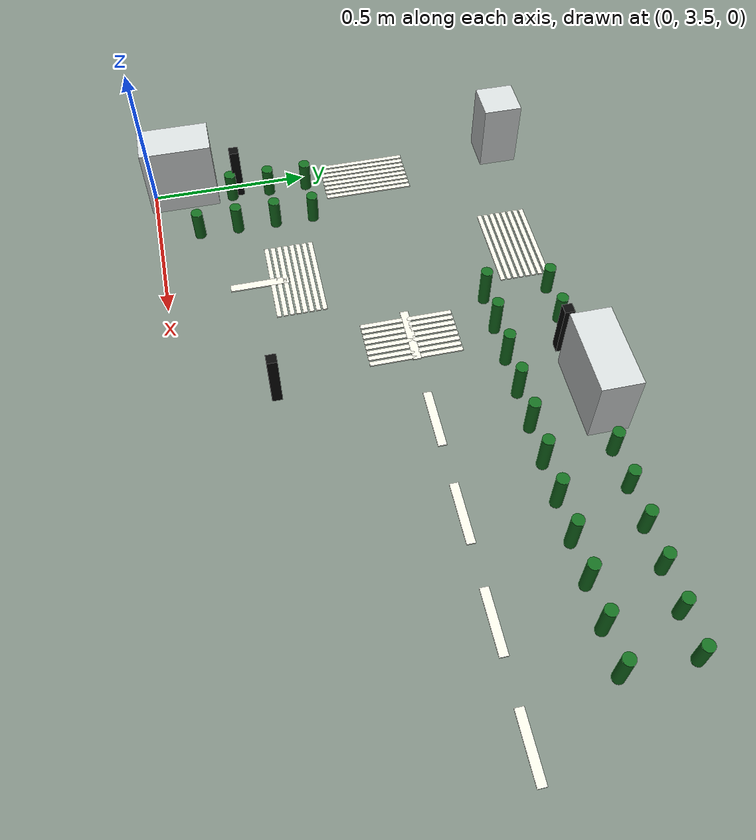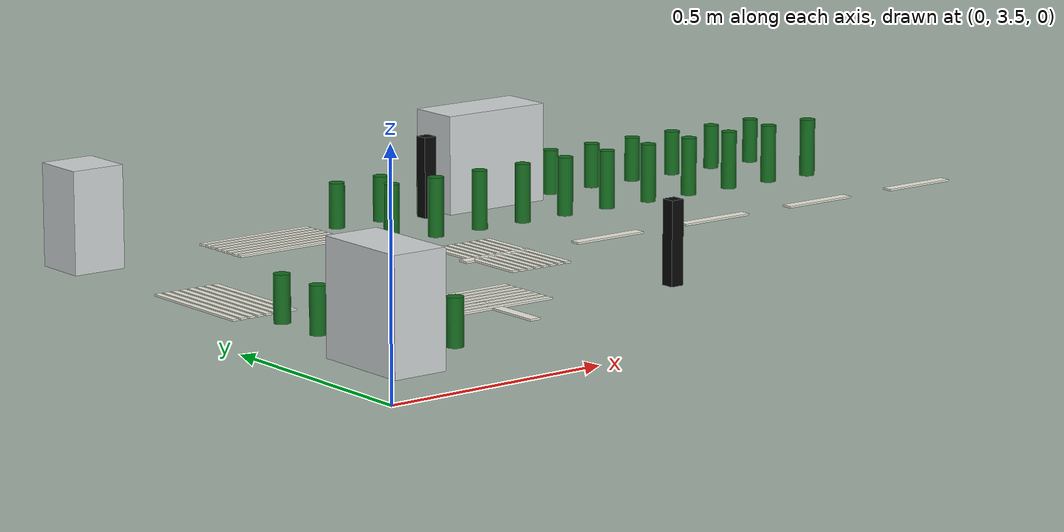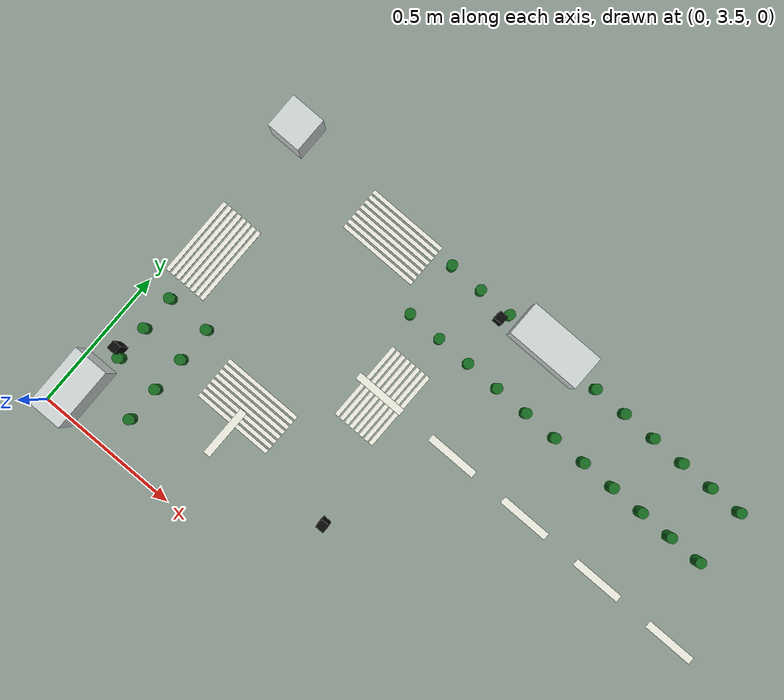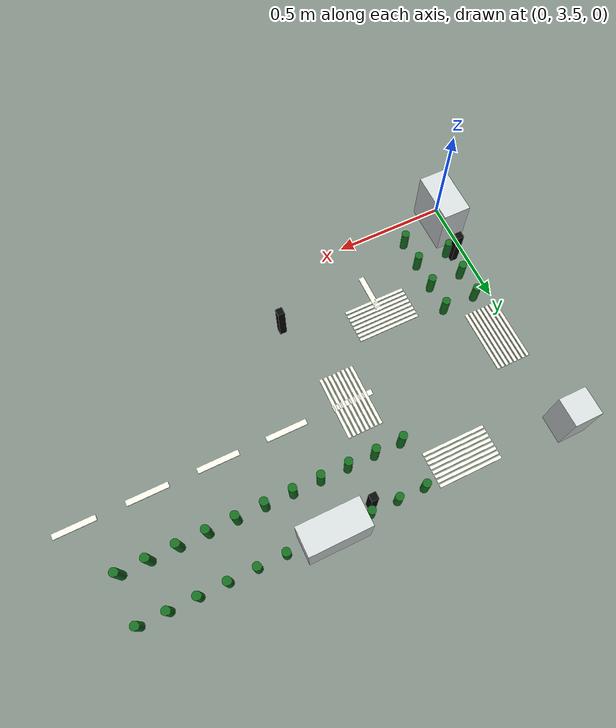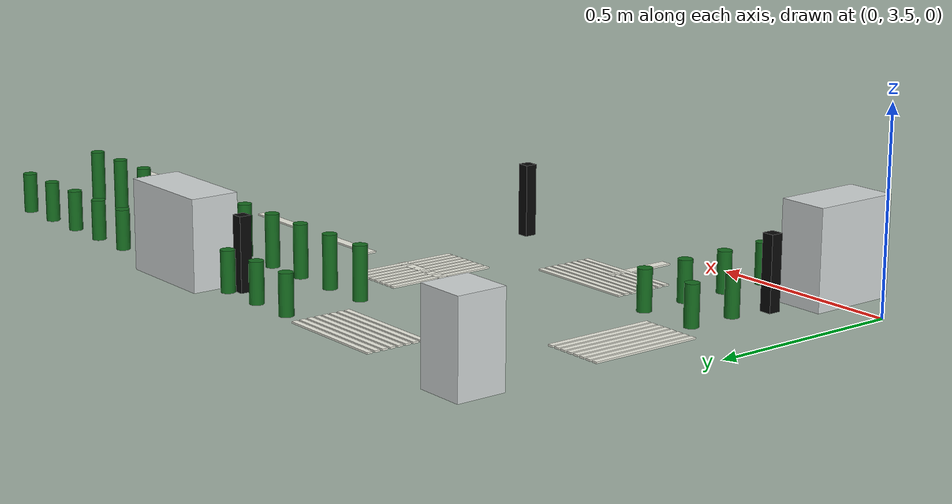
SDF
<sdf version="1.7">
 <world name="nexus_sandbox_imx219">
  <model name="LM-RING-W-11">
   <static>true</static>
   <pose>0.5 3.79 0.05450000000000001 0 0 0</pose>
   <link name="link">
    <collision name="collision"><geometry><box><size>0.025 0.18 0.004</size></box></geometry></collision>
    <visual name="visual">
     <geometry><box><size>0.025 0.18 0.004</size></box></geometry>
     <material><ambient>0.93 0.93 0.88 1</ambient><diffuse>0.93 0.93 0.88 1</diffuse></material>
    </visual>
   </link>
  </model>
  <model name="LM-RING-N-01">
   <static>true</static>
   <pose>0.79 4.2 0.05450000000000001 0 0 0</pose>
   <link name="link">
    <collision name="collision"><geometry><box><size>0.18 0.025 0.004</size></box></geometry></collision>
    <visual name="visual">
     <geometry><box><size>0.18 0.025 0.004</size></box></geometry>
     <material><ambient>0.93 0.93 0.88 1</ambient><diffuse>0.93 0.93 0.88 1</diffuse></material>
    </visual>
   </link>
  </model>
  <model name="LM-RING-N-02">
   <static>true</static>
   <pose>1.09 4.2 0.05450000000000001 0 0 0</pose>
   <link name="link">
    <collision name="collision"><geometry><box><size>0.18 0.025 0.004</size></box></geometry></collision>
    <visual name="visual">
     <geometry><box><size>0.18 0.025 0.004</size></box></geometry>
     <material><ambient>0.93 0.93 0.88 1</ambient><diffuse>0.93 0.93 0.88 1</diffuse></material>
    </visual>
   </link>
  </model>
  <model name="LM-RING-N-03">
   <static>true</static>
   <pose>1.3900000000000001 4.2 0.05450000000000001 0 0 0</pose>
   <link name="link">
    <collision name="collision"><geometry><box><size>0.18 0.025 0.004</size></box></geometry></collision>
    <visual name="visual">
     <geometry><box><size>0.18 0.025 0.004</size></box></geometry>
     <material><ambient>0.93 0.93 0.88 1</ambient><diffuse>0.93 0.93 0.88 1</diffuse></material>
    </visual>
   </link>
  </model>
  <model name="LM-RING-N-04">
   <static>true</static>
   <pose>1.69 4.2 0.05450000000000001 0 0 0</pose>
   <link name="link">
    <collision name="collision"><geometry><box><size>0.18 0.025 0.004</size></box></geometry></collision>
    <visual name="visual">
     <geometry><box><size>0.18 0.025 0.004</size></box></geometry>
     <material><ambient>0.93 0.93 0.88 1</ambient><diffuse>0.93 0.93 0.88 1</diffuse></material>
    </visual>
   </link>
  </model>
  <model name="LM-RING-N-05">
   <static>true</static>
   <pose>1.9900000000000002 4.2 0.05450000000000001 0 0 0</pose>
   <link name="link">
    <collision name="collision"><geometry><box><size>0.18 0.025 0.004</size></box></geometry></collision>
    <visual name="visual">
     <geometry><box><size>0.18 0.025 0.004</size></box></geometry>
     <material><ambient>0.93 0.93 0.88 1</ambient><diffuse>0.93 0.93 0.88 1</diffuse></material>
    </visual>
   </link>
  </model>
  <model name="CW-NW-X-01">
   <static>true</static>
   <pose>0.5 3.83 0.05450000000000001 0 0 0</pose>
   <link name="link">
    <collision name="collision"><geometry><box><size>0.28 0.014 0.004</size></box></geometry></collision>
    <visual name="visual">
     <geometry><box><size>0.28 0.014 0.004</size></box></geometry>
     <material><ambient>0.93 0.93 0.88 1</ambient><diffuse>0.93 0.93 0.88 1</diffuse></material>
    </visual>
   </link>
  </model>
  <model name="CW-NW-X-02">
   <static>true</static>
   <pose>0.5 3.85 0.05450000000000001 0 0 0</pose>
   <link name="link">
    <collision name="collision"><geometry><box><size>0.28 0.014 0.004</size></box></geometry></collision>
    <visual name="visual">
     <geometry><box><size>0.28 0.014 0.004</size></box></geometry>
     <material><ambient>0.93 0.93 0.88 1</ambient><diffuse>0.93 0.93 0.88 1</diffuse></material>
    </visual>
   </link>
  </model>
  <model name="CW-NW-X-03">
   <static>true</static>
   <pose>0.5 3.87 0.05450000000000001 0 0 0</pose>
   <link name="link">
    <collision name="collision"><geometry><box><size>0.28 0.014 0.004</size></box></geometry></collision>
    <visual name="visual">
     <geometry><box><size>0.28 0.014 0.004</size></box></geometry>
     <material><ambient>0.93 0.93 0.88 1</ambient><diffuse>0.93 0.93 0.88 1</diffuse></material>
    </visual>
   </link>
  </model>
  <model name="CW-NW-X-04">
   <static>true</static>
   <pose>0.5 3.89 0.05450000000000001 0 0 0</pose>
   <link name="link">
    <collision name="collision"><geometry><box><size>0.28 0.014 0.004</size></box></geometry></collision>
    <visual name="visual">
     <geometry><box><size>0.28 0.014 0.004</size></box></geometry>
     <material><ambient>0.93 0.93 0.88 1</ambient><diffuse>0.93 0.93 0.88 1</diffuse></material>
    </visual>
   </link>
  </model>
  <model name="CW-NW-X-05">
   <static>true</static>
   <pose>0.5 3.9099999999999997 0.05450000000000001 0 0 0</pose>
   <link name="link">
    <collision name="collision"><geometry><box><size>0.28 0.014 0.004</size></box></geometry></collision>
    <visual name="visual">
     <geometry><box><size>0.28 0.014 0.004</size></box></geometry>
     <material><ambient>0.93 0.93 0.88 1</ambient><diffuse>0.93 0.93 0.88 1</diffuse></material>
    </visual>
   </link>
  </model>
  <model name="CW-NW-X-06">
   <static>true</static>
   <pose>0.5 3.9299999999999997 0.05450000000000001 0 0 0</pose>
   <link name="link">
    <collision name="collision"><geometry><box><size>0.28 0.014 0.004</size></box></geometry></collision>
    <visual name="visual">
     <geometry><box><size>0.28 0.014 0.004</size></box></geometry>
     <material><ambient>0.93 0.93 0.88 1</ambient><diffuse>0.93 0.93 0.88 1</diffuse></material>
    </visual>
   </link>
  </model>
  <model name="CW-NW-X-07">
   <static>true</static>
   <pose>0.5 3.9499999999999997 0.05450000000000001 0 0 0</pose>
   <link name="link">
    <collision name="collision"><geometry><box><size>0.28 0.014 0.004</size></box></geometry></collision>
    <visual name="visual">
     <geometry><box><size>0.28 0.014 0.004</size></box></geometry>
     <material><ambient>0.93 0.93 0.88 1</ambient><diffuse>0.93 0.93 0.88 1</diffuse></material>
    </visual>
   </link>
  </model>
  <model name="CW-NW-X-08">
   <static>true</static>
   <pose>0.5 3.9699999999999998 0.05450000000000001 0 0 0</pose>
   <link name="link">
    <collision name="collision"><geometry><box><size>0.28 0.014 0.004</size></box></geometry></collision>
    <visual name="visual">
     <geometry><box><size>0.28 0.014 0.004</size></box></geometry>
     <material><ambient>0.93 0.93 0.88 1</ambient><diffuse>0.93 0.93 0.88 1</diffuse></material>
    </visual>
   </link>
  </model>
  <model name="CW-NW-Y-01">
   <static>true</static>
   <pose>0.73 4.2 0.05450000000000001 0 0 0</pose>
   <link name="link">
    <collision name="collision"><geometry><box><size>0.014 0.28 0.004</size></box></geometry></collision>
    <visual name="visual">
     <geometry><box><size>0.014 0.28 0.004</size></box></geometry>
     <material><ambient>0.93 0.93 0.88 1</ambient><diffuse>0.93 0.93 0.88 1</diffuse></material>
    </visual>
   </link>
  </model>
  <model name="CW-NW-Y-02">
   <static>true</static>
   <pose>0.75 4.2 0.05450000000000001 0 0 0</pose>
   <link name="link">
    <collision name="collision"><geometry><box><size>0.014 0.28 0.004</size></box></geometry></collision>
    <visual name="visual">
     <geometry><box><size>0.014 0.28 0.004</size></box></geometry>
     <material><ambient>0.93 0.93 0.88 1</ambient><diffuse>0.93 0.93 0.88 1</diffuse></material>
    </visual>
   </link>
  </model>
  <model name="CW-NW-Y-03">
   <static>true</static>
   <pose>0.77 4.2 0.05450000000000001 0 0 0</pose>
   <link name="link">
    <collision name="collision"><geometry><box><size>0.014 0.28 0.004</size></box></geometry></collision>
    <visual name="visual">
     <geometry><box><size>0.014 0.28 0.004</size></box></geometry>
     <material><ambient>0.93 0.93 0.88 1</ambient><diffuse>0.93 0.93 0.88 1</diffuse></material>
    </visual>
   </link>
  </model>
  <model name="CW-NW-Y-04">
   <static>true</static>
   <pose>0.79 4.2 0.05450000000000001 0 0 0</pose>
   <link name="link">
    <collision name="collision"><geometry><box><size>0.014 0.28 0.004</size></box></geometry></collision>
    <visual name="visual">
     <geometry><box><size>0.014 0.28 0.004</size></box></geometry>
     <material><ambient>0.93 0.93 0.88 1</ambient><diffuse>0.93 0.93 0.88 1</diffuse></material>
    </visual>
   </link>
  </model>
  <model name="CW-NW-Y-05">
   <static>true</static>
   <pose>0.81 4.2 0.05450000000000001 0 0 0</pose>
   <link name="link">
    <collision name="collision"><geometry><box><size>0.014 0.28 0.004</size></box></geometry></collision>
    <visual name="visual">
     <geometry><box><size>0.014 0.28 0.004</size></box></geometry>
     <material><ambient>0.93 0.93 0.88 1</ambient><diffuse>0.93 0.93 0.88 1</diffuse></material>
    </visual>
   </link>
  </model>
  <model name="CW-NW-Y-06">
   <static>true</static>
   <pose>0.8300000000000001 4.2 0.05450000000000001 0 0 0</pose>
   <link name="link">
    <collision name="collision"><geometry><box><size>0.014 0.28 0.004</size></box></geometry></collision>
    <visual name="visual">
     <geometry><box><size>0.014 0.28 0.004</size></box></geometry>
     <material><ambient>0.93 0.93 0.88 1</ambient><diffuse>0.93 0.93 0.88 1</diffuse></material>
    </visual>
   </link>
  </model>
  <model name="CW-NW-Y-07">
   <static>true</static>
   <pose>0.8500000000000001 4.2 0.05450000000000001 0 0 0</pose>
   <link name="link">
    <collision name="collision"><geometry><box><size>0.014 0.28 0.004</size></box></geometry></collision>
    <visual name="visual">
     <geometry><box><size>0.014 0.28 0.004</size></box></geometry>
     <material><ambient>0.93 0.93 0.88 1</ambient><diffuse>0.93 0.93 0.88 1</diffuse></material>
    </visual>
   </link>
  </model>
  <model name="CW-NW-Y-08">
   <static>true</static>
   <pose>0.8700000000000001 4.2 0.05450000000000001 0 0 0</pose>
   <link name="link">
    <collision name="collision"><geometry><box><size>0.014 0.28 0.004</size></box></geometry></collision>
    <visual name="visual">
     <geometry><box><size>0.014 0.28 0.004</size></box></geometry>
     <material><ambient>0.93 0.93 0.88 1</ambient><diffuse>0.93 0.93 0.88 1</diffuse></material>
    </visual>
   </link>
  </model>
  <model name="CW-EXT-W-N-01">
   <static>true</static>
   <pose>0.5 4.53 0.05450000000000001 0 0 0</pose>
   <link name="link">
    <collision name="collision"><geometry><box><size>0.28 0.014 0.004</size></box></geometry></collision>
    <visual name="visual">
     <geometry><box><size>0.28 0.014 0.004</size></box></geometry>
     <material><ambient>0.93 0.93 0.88 1</ambient><diffuse>0.93 0.93 0.88 1</diffuse></material>
    </visual>
   </link>
  </model>
  <model name="CW-EXT-W-N-02">
   <static>true</static>
   <pose>0.5 4.550000000000001 0.05450000000000001 0 0 0</pose>
   <link name="link">
    <collision name="collision"><geometry><box><size>0.28 0.014 0.004</size></box></geometry></collision>
    <visual name="visual">
     <geometry><box><size>0.28 0.014 0.004</size></box></geometry>
     <material><ambient>0.93 0.93 0.88 1</ambient><diffuse>0.93 0.93 0.88 1</diffuse></material>
    </visual>
   </link>
  </model>
  <model name="CW-EXT-W-N-03">
   <static>true</static>
   <pose>0.5 4.57 0.05450000000000001 0 0 0</pose>
   <link name="link">
    <collision name="collision"><geometry><box><size>0.28 0.014 0.004</size></box></geometry></collision>
    <visual name="visual">
     <geometry><box><size>0.28 0.014 0.004</size></box></geometry>
     <material><ambient>0.93 0.93 0.88 1</ambient><diffuse>0.93 0.93 0.88 1</diffuse></material>
    </visual>
   </link>
  </model>
  <model name="CW-EXT-W-N-04">
   <static>true</static>
   <pose>0.5 4.590000000000001 0.05450000000000001 0 0 0</pose>
   <link name="link">
    <collision name="collision"><geometry><box><size>0.28 0.014 0.004</size></box></geometry></collision>
    <visual name="visual">
     <geometry><box><size>0.28 0.014 0.004</size></box></geometry>
     <material><ambient>0.93 0.93 0.88 1</ambient><diffuse>0.93 0.93 0.88 1</diffuse></material>
    </visual>
   </link>
  </model>
  <model name="CW-EXT-W-N-05">
   <static>true</static>
   <pose>0.5 4.61 0.05450000000000001 0 0 0</pose>
   <link name="link">
    <collision name="collision"><geometry><box><size>0.28 0.014 0.004</size></box></geometry></collision>
    <visual name="visual">
     <geometry><box><size>0.28 0.014 0.004</size></box></geometry>
     <material><ambient>0.93 0.93 0.88 1</ambient><diffuse>0.93 0.93 0.88 1</diffuse></material>
    </visual>
   </link>
  </model>
  <model name="CW-EXT-W-N-06">
   <static>true</static>
   <pose>0.5 4.630000000000001 0.05450000000000001 0 0 0</pose>
   <link name="link">
    <collision name="collision"><geometry><box><size>0.28 0.014 0.004</size></box></geometry></collision>
    <visual name="visual">
     <geometry><box><size>0.28 0.014 0.004</size></box></geometry>
     <material><ambient>0.93 0.93 0.88 1</ambient><diffuse>0.93 0.93 0.88 1</diffuse></material>
    </visual>
   </link>
  </model>
  <model name="CW-EXT-W-N-07">
   <static>true</static>
   <pose>0.5 4.65 0.05450000000000001 0 0 0</pose>
   <link name="link">
    <collision name="collision"><geometry><box><size>0.28 0.014 0.004</size></box></geometry></collision>
    <visual name="visual">
     <geometry><box><size>0.28 0.014 0.004</size></box></geometry>
     <material><ambient>0.93 0.93 0.88 1</ambient><diffuse>0.93 0.93 0.88 1</diffuse></material>
    </visual>
   </link>
  </model>
  <model name="CW-EXT-W-N-08">
   <static>true</static>
   <pose>0.5 4.670000000000001 0.05450000000000001 0 0 0</pose>
   <link name="link">
    <collision name="collision"><geometry><box><size>0.28 0.014 0.004</size></box></geometry></collision>
    <visual name="visual">
     <geometry><box><size>0.28 0.014 0.004</size></box></geometry>
     <material><ambient>0.93 0.93 0.88 1</ambient><diffuse>0.93 0.93 0.88 1</diffuse></material>
    </visual>
   </link>
  </model>
  <model name="CW-EXT-N-W-01">
   <static>true</static>
   <pose>0.03 4.2 0.05450000000000001 0 0 0</pose>
   <link name="link">
    <collision name="collision"><geometry><box><size>0.014 0.28 0.004</size></box></geometry></collision>
    <visual name="visual">
     <geometry><box><size>0.014 0.28 0.004</size></box></geometry>
     <material><ambient>0.93 0.93 0.88 1</ambient><diffuse>0.93 0.93 0.88 1</diffuse></material>
    </visual>
   </link>
  </model>
  <model name="CW-EXT-N-W-02">
   <static>true</static>
   <pose>0.05 4.2 0.05450000000000001 0 0 0</pose>
   <link name="link">
    <collision name="collision"><geometry><box><size>0.014 0.28 0.004</size></box></geometry></collision>
    <visual name="visual">
     <geometry><box><size>0.014 0.28 0.004</size></box></geometry>
     <material><ambient>0.93 0.93 0.88 1</ambient><diffuse>0.93 0.93 0.88 1</diffuse></material>
    </visual>
   </link>
  </model>
  <model name="CW-EXT-N-W-03">
   <static>true</static>
   <pose>0.07 4.2 0.05450000000000001 0 0 0</pose>
   <link name="link">
    <collision name="collision"><geometry><box><size>0.014 0.28 0.004</size></box></geometry></collision>
    <visual name="visual">
     <geometry><box><size>0.014 0.28 0.004</size></box></geometry>
     <material><ambient>0.93 0.93 0.88 1</ambient><diffuse>0.93 0.93 0.88 1</diffuse></material>
    </visual>
   </link>
  </model>
  <model name="CW-EXT-N-W-04">
   <static>true</static>
   <pose>0.09000000000000001 4.2 0.05450000000000001 0 0 0</pose>
   <link name="link">
    <collision name="collision"><geometry><box><size>0.014 0.28 0.004</size></box></geometry></collision>
    <visual name="visual">
     <geometry><box><size>0.014 0.28 0.004</size></box></geometry>
     <material><ambient>0.93 0.93 0.88 1</ambient><diffuse>0.93 0.93 0.88 1</diffuse></material>
    </visual>
   </link>
  </model>
  <model name="CW-EXT-N-W-05">
   <static>true</static>
   <pose>0.11 4.2 0.05450000000000001 0 0 0</pose>
   <link name="link">
    <collision name="collision"><geometry><box><size>0.014 0.28 0.004</size></box></geometry></collision>
    <visual name="visual">
     <geometry><box><size>0.014 0.28 0.004</size></box></geometry>
     <material><ambient>0.93 0.93 0.88 1</ambient><diffuse>0.93 0.93 0.88 1</diffuse></material>
    </visual>
   </link>
  </model>
  <model name="CW-EXT-N-W-06">
   <static>true</static>
   <pose>0.13 4.2 0.05450000000000001 0 0 0</pose>
   <link name="link">
    <collision name="collision"><geometry><box><size>0.014 0.28 0.004</size></box></geometry></collision>
    <visual name="visual">
     <geometry><box><size>0.014 0.28 0.004</size></box></geometry>
     <material><ambient>0.93 0.93 0.88 1</ambient><diffuse>0.93 0.93 0.88 1</diffuse></material>
    </visual>
   </link>
  </model>
  <model name="CW-EXT-N-W-07">
   <static>true</static>
   <pose>0.15000000000000002 4.2 0.05450000000000001 0 0 0</pose>
   <link name="link">
    <collision name="collision"><geometry><box><size>0.014 0.28 0.004</size></box></geometry></collision>
    <visual name="visual">
     <geometry><box><size>0.014 0.28 0.004</size></box></geometry>
     <material><ambient>0.93 0.93 0.88 1</ambient><diffuse>0.93 0.93 0.88 1</diffuse></material>
    </visual>
   </link>
  </model>
  <model name="CW-EXT-N-W-08">
   <static>true</static>
   <pose>0.17 4.2 0.05450000000000001 0 0 0</pose>
   <link name="link">
    <collision name="collision"><geometry><box><size>0.014 0.28 0.004</size></box></geometry></collision>
    <visual name="visual">
     <geometry><box><size>0.014 0.28 0.004</size></box></geometry>
     <material><ambient>0.93 0.93 0.88 1</ambient><diffuse>0.93 0.93 0.88 1</diffuse></material>
    </visual>
   </link>
  </model>
  <model name="BLD-F01">
   <static>true</static>
   <pose>0.06 4.66 0.16 0 0 0</pose>
   <link name="link">
    <collision name="collision"><geometry><box><size>0.12 0.12 0.22</size></box></geometry></collision>
    <visual name="visual">
     <geometry><box><size>0.12 0.12 0.22</size></box></geometry>
     <material><ambient>0.82 0.84 0.84 1</ambient><diffuse>0.82 0.84 0.84 1</diffuse></material>
    </visual>
   </link>
  </model>
  <model name="BLD-F02">
   <static>true</static>
   <pose>1.1 4.66 0.16 0 0 0</pose>
   <link name="link">
    <collision name="collision"><geometry><box><size>0.26 0.12 0.22</size></box></geometry></collision>
    <visual name="visual">
     <geometry><box><size>0.26 0.12 0.22</size></box></geometry>
     <material><ambient>0.82 0.84 0.84 1</ambient><diffuse>0.82 0.84 0.84 1</diffuse></material>
    </visual>
   </link>
  </model>
  <model name="BLD-L04">
   <static>true</static>
   <pose>0.06 3.6 0.16999999999999998 0 0 0</pose>
   <link name="link">
    <collision name="collision"><geometry><box><size>0.12 0.22 0.24</size></box></geometry></collision>
    <visual name="visual">
     <geometry><box><size>0.12 0.22 0.24</size></box></geometry>
     <material><ambient>0.82 0.84 0.84 1</ambient><diffuse>0.82 0.84 0.84 1</diffuse></material>
    </visual>
   </link>
  </model>
  <model name="TR-L01-25">
   <static>true</static>
   <pose>0.1 3.6333333333333333 0.1 0 0 0</pose>
   <link name="link">
    <collision name="collision">
     <geometry><cylinder><radius>0.0175</radius><length>0.1</length></cylinder></geometry>
    </collision>
    <visual name="visual">
     <geometry><cylinder><radius>0.0175</radius><length>0.1</length></cylinder></geometry>
     <material><ambient>0.08 0.42 0.12 1</ambient><diffuse>0.08 0.42 0.12 1</diffuse></material>
    </visual>
   </link>
  </model>
  <model name="TR-L01-26">
   <static>true</static>
   <pose>0.1 3.7555555555555555 0.1 0 0 0</pose>
   <link name="link">
    <collision name="collision">
     <geometry><cylinder><radius>0.0175</radius><length>0.1</length></cylinder></geometry>
    </collision>
    <visual name="visual">
     <geometry><cylinder><radius>0.0175</radius><length>0.1</length></cylinder></geometry>
     <material><ambient>0.08 0.42 0.12 1</ambient><diffuse>0.08 0.42 0.12 1</diffuse></material>
    </visual>
   </link>
  </model>
  <model name="TR-L01-27">
   <static>true</static>
   <pose>0.1 3.8777777777777778 0.1 0 0 0</pose>
   <link name="link">
    <collision name="collision">
     <geometry><cylinder><radius>0.0175</radius><length>0.1</length></cylinder></geometry>
    </collision>
    <visual name="visual">
     <geometry><cylinder><radius>0.0175</radius><length>0.1</length></cylinder></geometry>
     <material><ambient>0.08 0.42 0.12 1</ambient><diffuse>0.08 0.42 0.12 1</diffuse></material>
    </visual>
   </link>
  </model>
  <model name="TR-L01-28">
   <static>true</static>
   <pose>0.1 4.0 0.1 0 0 0</pose>
   <link name="link">
    <collision name="collision">
     <geometry><cylinder><radius>0.0175</radius><length>0.1</length></cylinder></geometry>
    </collision>
    <visual name="visual">
     <geometry><cylinder><radius>0.0175</radius><length>0.1</length></cylinder></geometry>
     <material><ambient>0.08 0.42 0.12 1</ambient><diffuse>0.08 0.42 0.12 1</diffuse></material>
    </visual>
   </link>
  </model>
  <model name="TR-L02-25">
   <static>true</static>
   <pose>0.25 3.6333333333333333 0.1 0 0 0</pose>
   <link name="link">
    <collision name="collision">
     <geometry><cylinder><radius>0.0175</radius><length>0.1</length></cylinder></geometry>
    </collision>
    <visual name="visual">
     <geometry><cylinder><radius>0.0175</radius><length>0.1</length></cylinder></geometry>
     <material><ambient>0.08 0.42 0.12 1</ambient><diffuse>0.08 0.42 0.12 1</diffuse></material>
    </visual>
   </link>
  </model>
  <model name="TR-L02-26">
   <static>true</static>
   <pose>0.25 3.7555555555555555 0.1 0 0 0</pose>
   <link name="link">
    <collision name="collision">
     <geometry><cylinder><radius>0.0175</radius><length>0.1</length></cylinder></geometry>
    </collision>
    <visual name="visual">
     <geometry><cylinder><radius>0.0175</radius><length>0.1</length></cylinder></geometry>
     <material><ambient>0.08 0.42 0.12 1</ambient><diffuse>0.08 0.42 0.12 1</diffuse></material>
    </visual>
   </link>
  </model>
  <model name="TR-L02-27">
   <static>true</static>
   <pose>0.25 3.8777777777777778 0.1 0 0 0</pose>
   <link name="link">
    <collision name="collision">
     <geometry><cylinder><radius>0.0175</radius><length>0.1</length></cylinder></geometry>
    </collision>
    <visual name="visual">
     <geometry><cylinder><radius>0.0175</radius><length>0.1</length></cylinder></geometry>
     <material><ambient>0.08 0.42 0.12 1</ambient><diffuse>0.08 0.42 0.12 1</diffuse></material>
    </visual>
   </link>
  </model>
  <model name="TR-L02-28">
   <static>true</static>
   <pose>0.25 4.0 0.1 0 0 0</pose>
   <link name="link">
    <collision name="collision">
     <geometry><cylinder><radius>0.0175</radius><length>0.1</length></cylinder></geometry>
    </collision>
    <visual name="visual">
     <geometry><cylinder><radius>0.0175</radius><length>0.1</length></cylinder></geometry>
     <material><ambient>0.08 0.42 0.12 1</ambient><diffuse>0.08 0.42 0.12 1</diffuse></material>
    </visual>
   </link>
  </model>
  <model name="TR-B01-01">
   <static>true</static>
   <pose>0.7000000000000001 4.65 0.1 0 0 0</pose>
   <link name="link">
    <collision name="collision">
     <geometry><cylinder><radius>0.0175</radius><length>0.1</length></cylinder></geometry>
    </collision>
    <visual name="visual">
     <geometry><cylinder><radius>0.0175</radius><length>0.1</length></cylinder></geometry>
     <material><ambient>0.08 0.42 0.12 1</ambient><diffuse>0.08 0.42 0.12 1</diffuse></material>
    </visual>
   </link>
  </model>
  <model name="TR-B01-02">
   <static>true</static>
   <pose>0.8181818181818182 4.65 0.1 0 0 0</pose>
   <link name="link">
    <collision name="collision">
     <geometry><cylinder><radius>0.0175</radius><length>0.1</length></cylinder></geometry>
    </collision>
    <visual name="visual">
     <geometry><cylinder><radius>0.0175</radius><length>0.1</length></cylinder></geometry>
     <material><ambient>0.08 0.42 0.12 1</ambient><diffuse>0.08 0.42 0.12 1</diffuse></material>
    </visual>
   </link>
  </model>
  <model name="TR-B01-03">
   <static>true</static>
   <pose>0.9363636363636365 4.65 0.1 0 0 0</pose>
   <link name="link">
    <collision name="collision">
     <geometry><cylinder><radius>0.0175</radius><length>0.1</length></cylinder></geometry>
    </collision>
    <visual name="visual">
     <geometry><cylinder><radius>0.0175</radius><length>0.1</length></cylinder></geometry>
     <material><ambient>0.08 0.42 0.12 1</ambient><diffuse>0.08 0.42 0.12 1</diffuse></material>
    </visual>
   </link>
  </model>
  <model name="TR-B01-04">
   <static>true</static>
   <pose>1.0545454545454547 4.65 0.1 0 0 0</pose>
   <link name="link">
    <collision name="collision">
     <geometry><cylinder><radius>0.0175</radius><length>0.1</length></cylinder></geometry>
    </collision>
    <visual name="visual">
     <geometry><cylinder><radius>0.0175</radius><length>0.1</length></cylinder></geometry>
     <material><ambient>0.08 0.42 0.12 1</ambient><diffuse>0.08 0.42 0.12 1</diffuse></material>
    </visual>
   </link>
  </model>
  <model name="TR-B01-05">
   <static>true</static>
   <pose>1.1727272727272728 4.65 0.1 0 0 0</pose>
   <link name="link">
    <collision name="collision">
     <geometry><cylinder><radius>0.0175</radius><length>0.1</length></cylinder></geometry>
    </collision>
    <visual name="visual">
     <geometry><cylinder><radius>0.0175</radius><length>0.1</length></cylinder></geometry>
     <material><ambient>0.08 0.42 0.12 1</ambient><diffuse>0.08 0.42 0.12 1</diffuse></material>
    </visual>
   </link>
  </model>
  <model name="TR-B01-06">
   <static>true</static>
   <pose>1.290909090909091 4.65 0.1 0 0 0</pose>
   <link name="link">
    <collision name="collision">
     <geometry><cylinder><radius>0.0175</radius><length>0.1</length></cylinder></geometry>
    </collision>
    <visual name="visual">
     <geometry><cylinder><radius>0.0175</radius><length>0.1</length></cylinder></geometry>
     <material><ambient>0.08 0.42 0.12 1</ambient><diffuse>0.08 0.42 0.12 1</diffuse></material>
    </visual>
   </link>
  </model>
  <model name="TR-B01-07">
   <static>true</static>
   <pose>1.4090909090909092 4.65 0.1 0 0 0</pose>
   <link name="link">
    <collision name="collision">
     <geometry><cylinder><radius>0.0175</radius><length>0.1</length></cylinder></geometry>
    </collision>
    <visual name="visual">
     <geometry><cylinder><radius>0.0175</radius><length>0.1</length></cylinder></geometry>
     <material><ambient>0.08 0.42 0.12 1</ambient><diffuse>0.08 0.42 0.12 1</diffuse></material>
    </visual>
   </link>
  </model>
  <model name="TR-B01-08">
   <static>true</static>
   <pose>1.5272727272727273 4.65 0.1 0 0 0</pose>
   <link name="link">
    <collision name="collision">
     <geometry><cylinder><radius>0.0175</radius><length>0.1</length></cylinder></geometry>
    </collision>
    <visual name="visual">
     <geometry><cylinder><radius>0.0175</radius><length>0.1</length></cylinder></geometry>
     <material><ambient>0.08 0.42 0.12 1</ambient><diffuse>0.08 0.42 0.12 1</diffuse></material>
    </visual>
   </link>
  </model>
  <model name="TR-B01-09">
   <static>true</static>
   <pose>1.6454545454545455 4.65 0.1 0 0 0</pose>
   <link name="link">
    <collision name="collision">
     <geometry><cylinder><radius>0.0175</radius><length>0.1</length></cylinder></geometry>
    </collision>
    <visual name="visual">
     <geometry><cylinder><radius>0.0175</radius><length>0.1</length></cylinder></geometry>
     <material><ambient>0.08 0.42 0.12 1</ambient><diffuse>0.08 0.42 0.12 1</diffuse></material>
    </visual>
   </link>
  </model>
  <model name="TR-B01-10">
   <static>true</static>
   <pose>1.7636363636363637 4.65 0.1 0 0 0</pose>
   <link name="link">
    <collision name="collision">
     <geometry><cylinder><radius>0.0175</radius><length>0.1</length></cylinder></geometry>
    </collision>
    <visual name="visual">
     <geometry><cylinder><radius>0.0175</radius><length>0.1</length></cylinder></geometry>
     <material><ambient>0.08 0.42 0.12 1</ambient><diffuse>0.08 0.42 0.12 1</diffuse></material>
    </visual>
   </link>
  </model>
  <model name="TR-B01-11">
   <static>true</static>
   <pose>1.8818181818181818 4.65 0.1 0 0 0</pose>
   <link name="link">
    <collision name="collision">
     <geometry><cylinder><radius>0.0175</radius><length>0.1</length></cylinder></geometry>
    </collision>
    <visual name="visual">
     <geometry><cylinder><radius>0.0175</radius><length>0.1</length></cylinder></geometry>
     <material><ambient>0.08 0.42 0.12 1</ambient><diffuse>0.08 0.42 0.12 1</diffuse></material>
    </visual>
   </link>
  </model>
  <model name="TR-B02-01">
   <static>true</static>
   <pose>0.7000000000000001 4.45 0.115 0 0 0</pose>
   <link name="link">
    <collision name="collision">
     <geometry><cylinder><radius>0.0175</radius><length>0.13</length></cylinder></geometry>
    </collision>
    <visual name="visual">
     <geometry><cylinder><radius>0.0175</radius><length>0.13</length></cylinder></geometry>
     <material><ambient>0.08 0.42 0.12 1</ambient><diffuse>0.08 0.42 0.12 1</diffuse></material>
    </visual>
   </link>
  </model>
  <model name="TR-B02-02">
   <static>true</static>
   <pose>0.8181818181818182 4.45 0.115 0 0 0</pose>
   <link name="link">
    <collision name="collision">
     <geometry><cylinder><radius>0.0175</radius><length>0.13</length></cylinder></geometry>
    </collision>
    <visual name="visual">
     <geometry><cylinder><radius>0.0175</radius><length>0.13</length></cylinder></geometry>
     <material><ambient>0.08 0.42 0.12 1</ambient><diffuse>0.08 0.42 0.12 1</diffuse></material>
    </visual>
   </link>
  </model>
  <model name="TR-B02-03">
   <static>true</static>
   <pose>0.9363636363636365 4.45 0.115 0 0 0</pose>
   <link name="link">
    <collision name="collision">
     <geometry><cylinder><radius>0.0175</radius><length>0.13</length></cylinder></geometry>
    </collision>
    <visual name="visual">
     <geometry><cylinder><radius>0.0175</radius><length>0.13</length></cylinder></geometry>
     <material><ambient>0.08 0.42 0.12 1</ambient><diffuse>0.08 0.42 0.12 1</diffuse></material>
    </visual>
   </link>
  </model>
  <model name="TR-B02-04">
   <static>true</static>
   <pose>1.0545454545454547 4.45 0.115 0 0 0</pose>
   <link name="link">
    <collision name="collision">
     <geometry><cylinder><radius>0.0175</radius><length>0.13</length></cylinder></geometry>
    </collision>
    <visual name="visual">
     <geometry><cylinder><radius>0.0175</radius><length>0.13</length></cylinder></geometry>
     <material><ambient>0.08 0.42 0.12 1</ambient><diffuse>0.08 0.42 0.12 1</diffuse></material>
    </visual>
   </link>
  </model>
  <model name="TR-B02-05">
   <static>true</static>
   <pose>1.1727272727272728 4.45 0.115 0 0 0</pose>
   <link name="link">
    <collision name="collision">
     <geometry><cylinder><radius>0.0175</radius><length>0.13</length></cylinder></geometry>
    </collision>
    <visual name="visual">
     <geometry><cylinder><radius>0.0175</radius><length>0.13</length></cylinder></geometry>
     <material><ambient>0.08 0.42 0.12 1</ambient><diffuse>0.08 0.42 0.12 1</diffuse></material>
    </visual>
   </link>
  </model>
  <model name="TR-B02-06">
   <static>true</static>
   <pose>1.290909090909091 4.45 0.115 0 0 0</pose>
   <link name="link">
    <collision name="collision">
     <geometry><cylinder><radius>0.0175</radius><length>0.13</length></cylinder></geometry>
    </collision>
    <visual name="visual">
     <geometry><cylinder><radius>0.0175</radius><length>0.13</length></cylinder></geometry>
     <material><ambient>0.08 0.42 0.12 1</ambient><diffuse>0.08 0.42 0.12 1</diffuse></material>
    </visual>
   </link>
  </model>
  <model name="TR-B02-07">
   <static>true</static>
   <pose>1.4090909090909092 4.45 0.115 0 0 0</pose>
   <link name="link">
    <collision name="collision">
     <geometry><cylinder><radius>0.0175</radius><length>0.13</length></cylinder></geometry>
    </collision>
    <visual name="visual">
     <geometry><cylinder><radius>0.0175</radius><length>0.13</length></cylinder></geometry>
     <material><ambient>0.08 0.42 0.12 1</ambient><diffuse>0.08 0.42 0.12 1</diffuse></material>
    </visual>
   </link>
  </model>
  <model name="TR-B02-08">
   <static>true</static>
   <pose>1.5272727272727273 4.45 0.115 0 0 0</pose>
   <link name="link">
    <collision name="collision">
     <geometry><cylinder><radius>0.0175</radius><length>0.13</length></cylinder></geometry>
    </collision>
    <visual name="visual">
     <geometry><cylinder><radius>0.0175</radius><length>0.13</length></cylinder></geometry>
     <material><ambient>0.08 0.42 0.12 1</ambient><diffuse>0.08 0.42 0.12 1</diffuse></material>
    </visual>
   </link>
  </model>
  <model name="TR-B02-09">
   <static>true</static>
   <pose>1.6454545454545455 4.45 0.115 0 0 0</pose>
   <link name="link">
    <collision name="collision">
     <geometry><cylinder><radius>0.0175</radius><length>0.13</length></cylinder></geometry>
    </collision>
    <visual name="visual">
     <geometry><cylinder><radius>0.0175</radius><length>0.13</length></cylinder></geometry>
     <material><ambient>0.08 0.42 0.12 1</ambient><diffuse>0.08 0.42 0.12 1</diffuse></material>
    </visual>
   </link>
  </model>
  <model name="TR-B02-10">
   <static>true</static>
   <pose>1.7636363636363637 4.45 0.115 0 0 0</pose>
   <link name="link">
    <collision name="collision">
     <geometry><cylinder><radius>0.0175</radius><length>0.13</length></cylinder></geometry>
    </collision>
    <visual name="visual">
     <geometry><cylinder><radius>0.0175</radius><length>0.13</length></cylinder></geometry>
     <material><ambient>0.08 0.42 0.12 1</ambient><diffuse>0.08 0.42 0.12 1</diffuse></material>
    </visual>
   </link>
  </model>
  <model name="TR-B02-11">
   <static>true</static>
   <pose>1.8818181818181818 4.45 0.115 0 0 0</pose>
   <link name="link">
    <collision name="collision">
     <geometry><cylinder><radius>0.0175</radius><length>0.13</length></cylinder></geometry>
    </collision>
    <visual name="visual">
     <geometry><cylinder><radius>0.0175</radius><length>0.13</length></cylinder></geometry>
     <material><ambient>0.08 0.42 0.12 1</ambient><diffuse>0.08 0.42 0.12 1</diffuse></material>
    </visual>
   </link>
  </model>
  <model name="TL-NW-1">
   <static>true</static>
   <pose>0.08 3.7800000000000002 0.14 0 0 0</pose>
   <link name="link">
    <collision name="collision"><geometry><box><size>0.03 0.03 0.18</size></box></geometry></collision>
    <visual name="visual">
     <geometry><box><size>0.03 0.03 0.18</size></box></geometry>
     <material><ambient>0.03 0.03 0.03 1</ambient><diffuse>0.03 0.03 0.03 1</diffuse></material>
    </visual>
   </link>
  </model>
  <model name="TL-NW-2">
   <static>true</static>
   <pose>0.92 3.7800000000000002 0.14 0 0 0</pose>
   <link name="link">
    <collision name="collision"><geometry><box><size>0.03 0.03 0.18</size></box></geometry></collision>
    <visual name="visual">
     <geometry><box><size>0.03 0.03 0.18</size></box></geometry>
     <material><ambient>0.03 0.03 0.03 1</ambient><diffuse>0.03 0.03 0.03 1</diffuse></material>
    </visual>
   </link>
  </model>
  <model name="TL-NW-3">
   <static>true</static>
   <pose>0.08 4.62 0.14 0 0 0</pose>
   <link name="link">
    <collision name="collision"><geometry><box><size>0.03 0.03 0.18</size></box></geometry></collision>
    <visual name="visual">
     <geometry><box><size>0.03 0.03 0.18</size></box></geometry>
     <material><ambient>0.03 0.03 0.03 1</ambient><diffuse>0.03 0.03 0.03 1</diffuse></material>
    </visual>
   </link>
  </model>
  <model name="TL-NW-4">
   <static>true</static>
   <pose>0.92 4.62 0.14 0 0 0</pose>
   <link name="link">
    <collision name="collision"><geometry><box><size>0.03 0.03 0.18</size></box></geometry></collision>
    <visual name="visual">
     <geometry><box><size>0.03 0.03 0.18</size></box></geometry>
     <material><ambient>0.03 0.03 0.03 1</ambient><diffuse>0.03 0.03 0.03 1</diffuse></material>
    </visual>
   </link>
  </model>
 </world>
</sdf>
